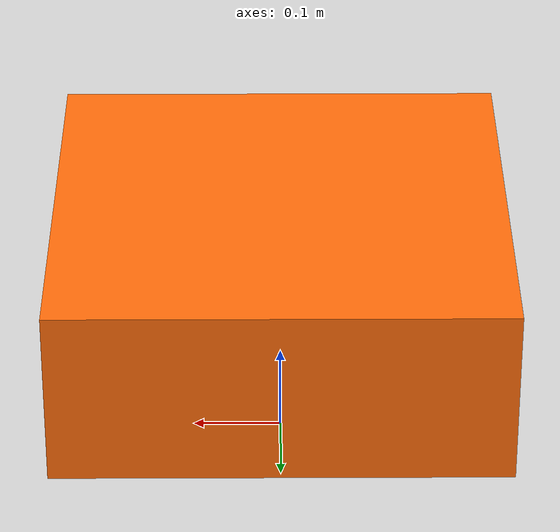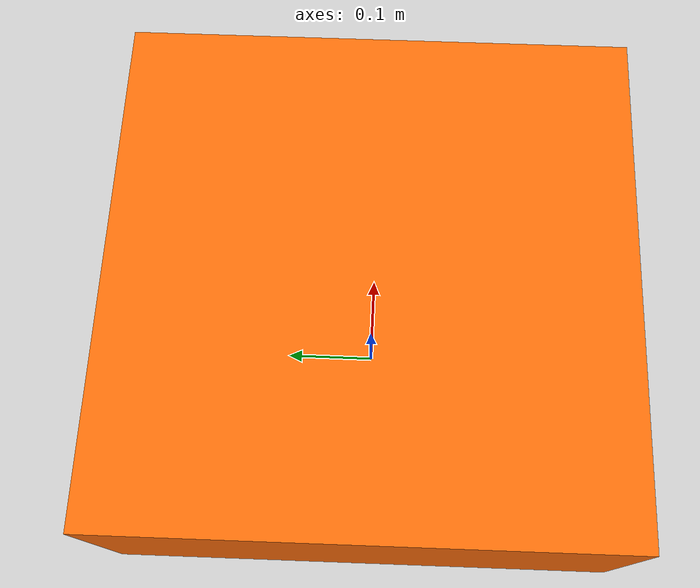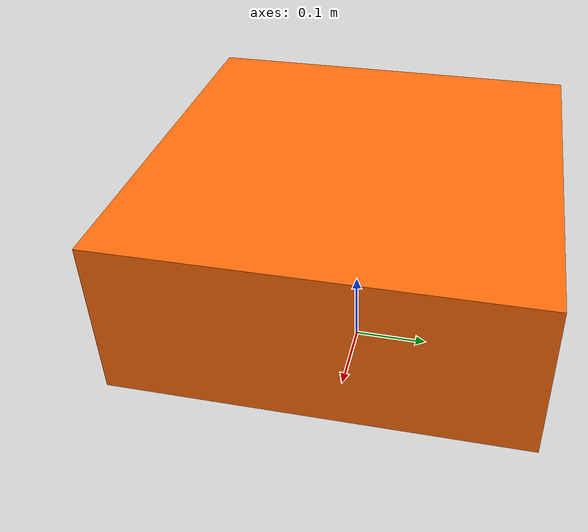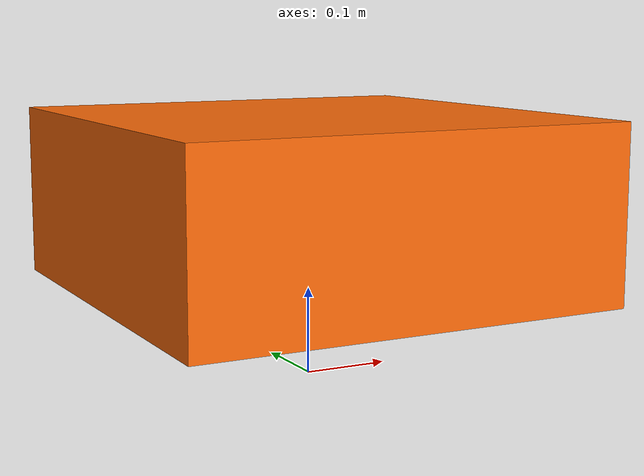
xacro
<?xml version="1.0"?>

<robot name="sensor" xmlns:xacro="http://www.ros.org/wiki/xacro">
      <xacro:property name="height1" value="1.2" />
  <xacro:property name="height2" value="0.5" />
  <xacro:property name="width" value="0.2" />
  <xacro:property name="mass" value="0.1" />
 <!-- Used for fixing robot to Gazebo 'base_link' -->
  <link name="world"/>

  <joint name="fixed" type="fixed">
    <parent link="world"/>
    <child link="camera_link"/>
    <origin xyz="0 0 0.1" rpy="0 0 0"/>
  </joint>

  <!-- Camera Link -->
  <link name="camera_link">
    <collision>
      <origin xyz="0 0 0.1" rpy="0 0 0"/>
    </collision>

    <visual>
      <origin xyz="0 0 0.1" rpy="0 0 0"/>
      <material name="orange"/>
      <geometry>
        <box size="0.5 0.5 0.2"/>
      </geometry>
    </visual>

    <inertial>
      <origin xyz="0 0 0" rpy="0 0 0"/>
      <mass value="${mass}"/>
      <inertia
	  ixx="${mass}" ixy="0.0" ixz="0.0"
	  iyy="${mass}" iyz="0.0"
	  izz="${mass}"/>
    </inertial>
  </link>

  <link name="camera_optical_link">

  </link>

  <joint name="optical_joint" type="fixed">
    <parent link="camera_link"/>
    <child link="camera_optical_link"/>
    <origin xyz="0.01 0 0.15" rpy="0.0 0 0"/>
  </joint>

  <material name="orange">
    <color rgba="${255/255} ${108/255} ${10/255} 1.0"/>
  </material>
    <gazebo reference="camera_optical_link">
    <sensor type="camera" name="camera1">
      <update_rate>30.0</update_rate>
      <camera name="head">
        <horizontal_fov>1.3962634</horizontal_fov>
        <image>
          <width>800</width>
          <height>800</height>
          <format>R8G8B8</format>
        </image>
        <clip>
          <near>0.02</near>
          <far>300</far>
        </clip>
        <noise>
          <type>gaussian</type>
          <!-- Noise is sampled independently per pixel on each frame.
               That pixel's noise value is added to each of its color
               channels, which at that point lie in the range [0,1]. -->
          <mean>0.0</mean>
          <stddev>0.007</stddev>
        </noise>
      </camera>
      <plugin name="camera_controller" filename="libgazebo_ros_camera.so">
        <alwaysOn>true</alwaysOn>
        <updateRate>0.0</updateRate>
        <cameraName>rrbot/camera1</cameraName>
        <imageTopicName>image_raw</imageTopicName>
        <cameraInfoTopicName>camera_info</cameraInfoTopicName>
        <frameName>camera_link</frameName>
        <hackBaseline>0.07</hackBaseline>
        <distortionK1>0.0</distortionK1>
        <distortionK2>0.0</distortionK2>
        <distortionK3>0.0</distortionK3>
        <distortionT1>0.0</distortionT1>
        <distortionT2>0.0</distortionT2>
      </plugin>
    </sensor>
  </gazebo>

</robot>
